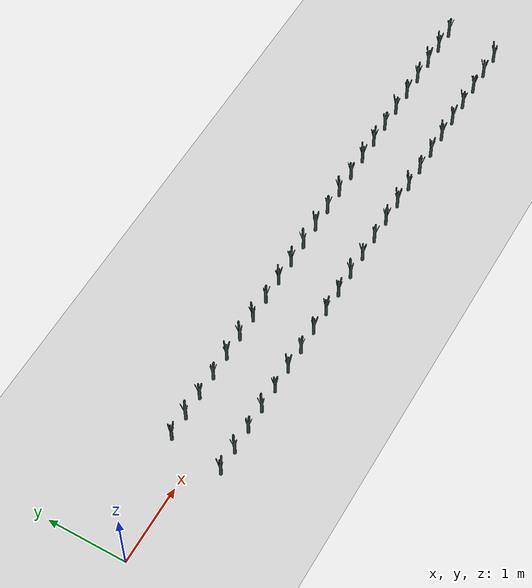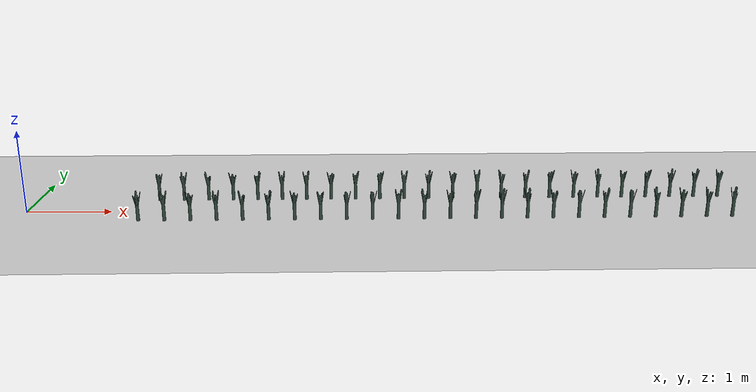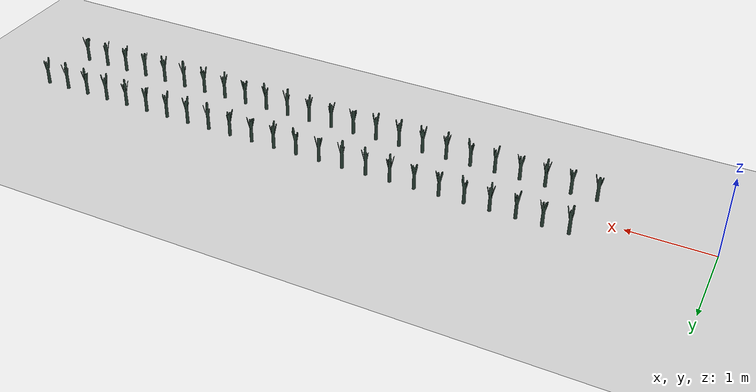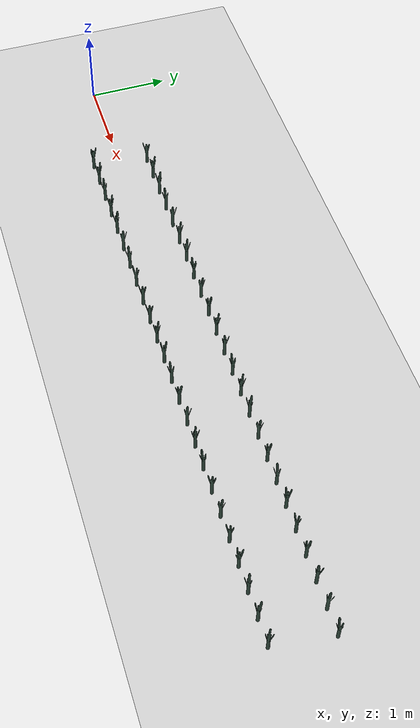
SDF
<sdf version="1.6">
 <world name="default">
  <light name="sun" type="directional">
   <pose>0 0 10 0 -0 0</pose>
   <diffuse>0.5 0.5 0.5 1</diffuse>
   <specular>0.1 0.1 0.1 1</specular>
   <attenuation>
    <range>1000</range>
    <constant>0.9</constant>
    <linear>0.01</linear>
    <quadratic>0.001</quadratic>
   </attenuation>
   <direction>0.9 0.5 -1</direction>
  </light>
  <scene><background>130 200 255 1</background><ambient>130 140 140 1</ambient></scene>
  <include><uri>model://dirt_plane</uri></include>
  <include><uri>model://Leek</uri><pose>1.500000 0.350000 0.15 0 0 73.610248</pose><static>0</static></include>
  <include><uri>model://Leek</uri><pose>1.800000 0.350000 0.15 0 0 119.978513</pose><static>0</static></include>
  <include><uri>model://Leek</uri><pose>2.100000 0.350000 0.15 0 0 153.293016</pose><static>0</static></include>
  <include><uri>model://Leek</uri><pose>2.400000 0.350000 0.15 0 0 -84.782628</pose><static>0</static></include>
  <include><uri>model://Leek</uri><pose>2.700000 0.350000 0.15 0 0 81.183401</pose><static>0</static></include>
  <include><uri>model://Leek</uri><pose>3.000000 0.350000 0.15 0 0 170.480069</pose><static>0</static></include>
  <include><uri>model://Leek</uri><pose>3.300000 0.350000 0.15 0 0 63.846477</pose><static>0</static></include>
  <include><uri>model://Leek</uri><pose>3.600000 0.350000 0.15 0 0 -78.238371</pose><static>0</static></include>
  <include><uri>model://Leek</uri><pose>3.900000 0.350000 0.15 0 0 112.146048</pose><static>0</static></include>
  <include><uri>model://Leek</uri><pose>4.200000 0.350000 0.15 0 0 17.590637</pose><static>0</static></include>
  <include><uri>model://Leek</uri><pose>4.500000 0.350000 0.15 0 0 -37.012273</pose><static>0</static></include>
  <include>
   <uri>model://Leek</uri>
   <pose>4.800000 0.350000 0.15 0 0 -107.199467</pose>
   <static>0</static>
  </include>
  <include>
   <uri>model://Leek</uri>
   <pose>5.100000 0.350000 0.15 0 0 -153.779275</pose>
   <static>0</static>
  </include>
  <include><uri>model://Leek</uri><pose>5.400000 0.350000 0.15 0 0 57.399834</pose><static>0</static></include>
  <include>
   <uri>model://Leek</uri>
   <pose>5.700000 0.350000 0.15 0 0 -173.470244</pose>
   <static>0</static>
  </include>
  <include><uri>model://Leek</uri><pose>6.000000 0.350000 0.15 0 0 17.885777</pose><static>0</static></include>
  <include><uri>model://Leek</uri><pose>6.300000 0.350000 0.15 0 0 99.051750</pose><static>0</static></include>
  <include><uri>model://Leek</uri><pose>6.600000 0.350000 0.15 0 0 166.366531</pose><static>0</static></include>
  <include>
   <uri>model://Leek</uri>
   <pose>6.900000 0.350000 0.15 0 0 -105.224278</pose>
   <static>0</static>
  </include>
  <include>
   <uri>model://Leek</uri>
   <pose>7.200000 0.350000 0.15 0 0 -153.390472</pose>
   <static>0</static>
  </include>
  <include>
   <uri>model://Leek</uri>
   <pose>7.500000 0.350000 0.15 0 0 -102.034141</pose>
   <static>0</static>
  </include>
  <include>
   <uri>model://Leek</uri>
   <pose>7.800000 0.350000 0.15 0 0 -107.386843</pose>
   <static>0</static>
  </include>
  <include>
   <uri>model://Leek</uri>
   <pose>8.100000 0.350000 0.15 0 0 -170.562987</pose>
   <static>0</static>
  </include>
  <include><uri>model://Leek</uri><pose>8.400000 0.350000 0.15 0 0 -9.442933</pose><static>0</static></include>
  <include>
   <uri>model://Leek</uri>
   <pose>1.402136 -0.350000 0.15 0 0 -24.901164</pose>
   <static>0</static>
  </include>
  <include>
   <uri>model://Leek</uri>
   <pose>1.702136 -0.350000 0.15 0 0 -124.873250</pose>
   <static>0</static>
  </include>
  <include><uri>model://Leek</uri><pose>2.002136 -0.350000 0.15 0 0 78.560841</pose><static>0</static></include>
  <include>
   <uri>model://Leek</uri>
   <pose>2.302136 -0.350000 0.15 0 0 101.234747</pose>
   <static>0</static>
  </include>
  <include>
   <uri>model://Leek</uri>
   <pose>2.602136 -0.350000 0.15 0 0 103.121840</pose>
   <static>0</static>
  </include>
  <include><uri>model://Leek</uri><pose>2.902136 -0.350000 0.15 0 0 68.629717</pose><static>0</static></include>
  <include>
   <uri>model://Leek</uri>
   <pose>3.202136 -0.350000 0.15 0 0 -47.156976</pose>
   <static>0</static>
  </include>
  <include>
   <uri>model://Leek</uri>
   <pose>3.502136 -0.350000 0.15 0 0 135.884698</pose>
   <static>0</static>
  </include>
  <include>
   <uri>model://Leek</uri>
   <pose>3.802136 -0.350000 0.15 0 0 -133.700052</pose>
   <static>0</static>
  </include>
  <include>
   <uri>model://Leek</uri>
   <pose>4.102136 -0.350000 0.15 0 0 -39.530879</pose>
   <static>0</static>
  </include>
  <include>
   <uri>model://Leek</uri>
   <pose>4.402136 -0.350000 0.15 0 0 164.138053</pose>
   <static>0</static>
  </include>
  <include><uri>model://Leek</uri><pose>4.702136 -0.350000 0.15 0 0 46.172745</pose><static>0</static></include>
  <include><uri>model://Leek</uri><pose>5.002136 -0.350000 0.15 0 0 59.817044</pose><static>0</static></include>
  <include>
   <uri>model://Leek</uri>
   <pose>5.302136 -0.350000 0.15 0 0 -26.429424</pose>
   <static>0</static>
  </include>
  <include><uri>model://Leek</uri><pose>5.602136 -0.350000 0.15 0 0 68.555457</pose><static>0</static></include>
  <include><uri>model://Leek</uri><pose>5.902136 -0.350000 0.15 0 0 32.551433</pose><static>0</static></include>
  <include><uri>model://Leek</uri><pose>6.202136 -0.350000 0.15 0 0 -2.915502</pose><static>0</static></include>
  <include>
   <uri>model://Leek</uri>
   <pose>6.502136 -0.350000 0.15 0 0 -102.566376</pose>
   <static>0</static>
  </include>
  <include>
   <uri>model://Leek</uri>
   <pose>6.802136 -0.350000 0.15 0 0 -70.063918</pose>
   <static>0</static>
  </include>
  <include>
   <uri>model://Leek</uri>
   <pose>7.102136 -0.350000 0.15 0 0 -146.673088</pose>
   <static>0</static>
  </include>
  <include><uri>model://Leek</uri><pose>7.402136 -0.350000 0.15 0 0 89.677453</pose><static>0</static></include>
  <include><uri>model://Leek</uri><pose>7.702136 -0.350000 0.15 0 0 78.104959</pose><static>0</static></include>
  <include>
   <uri>model://Leek</uri>
   <pose>8.002136 -0.350000 0.15 0 0 -148.584973</pose>
   <static>0</static>
  </include>
  <include><uri>model://Leek</uri><pose>8.302136 -0.350000 0.15 0 0 13.535390</pose><static>0</static></include>
 </world>
</sdf>

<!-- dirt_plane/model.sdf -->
<sdf version="1.4">
<model name="dirt_plane">
  <static>true</static>
    <link name="link">
      <collision name="collision">
        <geometry>
          <plane>
            <normal>0 0 1</normal>
            <size>100 100</size>
          </plane>
        </geometry>
        <surface>
          <friction>
            <ode>
              <mu>0.99</mu>
              <mu2>0.99</mu2>
            </ode>
          </friction>
        </surface>
      </collision>
      <visual name="visual">
        <cast_shadows>false</cast_shadows>
        <geometry>
          <plane>
            <normal>0 0 1</normal>
            <size>100 100</size>
          </plane>
        </geometry>
        <material>
          <script>
            <uri>model://ground_plane/materials/scripts/my_ground_plane.material</uri>
            <uri>model://ground_plane/materials/textures</uri>
            <name>my_ground_plane/Dirt</name>
          </script>
        </material>
      </visual>
    </link>
  </model>
</sdf>

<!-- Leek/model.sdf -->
<sdf version='1.6'>
  <model name='Leek'>
    <link name='link'>
      <pose frame=''>0 0 0 0 -0 0</pose>
      <inertial>
        <mass>1</mass>
        <inertia>
          <ixx>0.145833</ixx>
          <ixy>0</ixy>
          <ixz>0</ixz>
          <iyy>0.145833</iyy>
          <iyz>0</iyz>
          <izz>0.125</izz>
        </inertia>
        <pose frame=''>0 0 0 0 -0 0</pose>
      </inertial>
      <self_collide>0</self_collide>
      <kinematic>0</kinematic>
      <gravity>1</gravity>
      <visual name='visual'>
        <geometry>
          <mesh>
            <uri>model://Leek/Poireau.dae</uri>
            <scale>1 1 1</scale>
          </mesh>
        </geometry>
        <material>
          <script>
            <name>Gazebo/Grey</name>
            <uri>file://media/materials/scripts/gazebo.material</uri>
          </script>
          <ambient>0.3 0.6 0.5 0</ambient>
          <diffuse>0.2 0.3 0.25 0</diffuse>
          <specular>0 0 0 1</specular>
          <emissive>0 0 0 1</emissive>
          <shader type='vertex'>
            <normal_map>__default__</normal_map>
          </shader>
        </material>
        <pose frame=''>0 0 -0.08 0 -0 0</pose>
        <cast_shadows>1</cast_shadows>
        <transparency>0</transparency>
      </visual>
      <collision name='collision'>
        <laser_retro>0</laser_retro>
        <max_contacts>10</max_contacts>
        <pose frame=''>0 0 0 0 -0 0</pose>
        <geometry>
          <cylinder>
            <radius>0.02</radius>
            <length>0.25</length>
          </cylinder>
        </geometry>
        <surface>
          <friction>
            <ode>
              <mu>1</mu>
              <mu2>1</mu2>
              <fdir1>0 0 0</fdir1>
              <slip1>0</slip1>
              <slip2>0</slip2>
            </ode>
            <torsional>
              <coefficient>1</coefficient>
              <patch_radius>0</patch_radius>
              <surface_radius>0</surface_radius>
              <use_patch_radius>1</use_patch_radius>
              <ode>
                <slip>0</slip>
              </ode>
            </torsional>
          </friction>
          <bounce>
            <restitution_coefficient>0</restitution_coefficient>
            <threshold>1e+06</threshold>
          </bounce>
          <contact>
            <collide_without_contact>0</collide_without_contact>
            <collide_without_contact_bitmask>1</collide_without_contact_bitmask>
            <collide_bitmask>1</collide_bitmask>
            <ode>
              <soft_cfm>0</soft_cfm>
              <soft_erp>0.2</soft_erp>
              <kp>1e+13</kp>
              <kd>1</kd>
              <max_vel>0.01</max_vel>
              <min_depth>0</min_depth>
            </ode>
            <bullet>
              <split_impulse>1</split_impulse>
              <split_impulse_penetration_threshold>-0.01</split_impulse_penetration_threshold>
              <soft_cfm>0</soft_cfm>
              <soft_erp>0.2</soft_erp>
              <kp>1e+13</kp>
              <kd>1</kd>
            </bullet>
          </contact>
        </surface>
      </collision>
    </link>
    <static>0</static>
    <allow_auto_disable>1</allow_auto_disable>
  </model>
</sdf>
